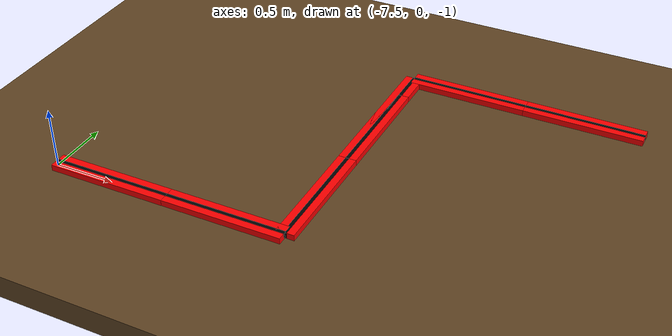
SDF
<sdf version="1.7">
 <world name="teknofest_pipe">
  <physics name="default_physics" default="true" type="ode">
   <max_step_size>0.01</max_step_size>
   <real_time_factor>1</real_time_factor>
   <real_time_update_rate>100</real_time_update_rate>
  </physics>
  <scene>
   <ambient>0.45 0.52 0.55 1</ambient>
   <background>0.06 0.12 0.15 1</background>
   <shadows>false</shadows>
  </scene>
  <light type="directional" name="surface_light">
   <pose>0 0 10 0 0 0</pose>
   <diffuse>0.65 0.72 0.75 1</diffuse>
   <specular>0.01 0.01 0.01 1</specular>
   <direction>0.15 -0.20 -1</direction>
   <cast_shadows>false</cast_shadows>
  </light>
  <model name="teknofest_seafloor">
   <static>true</static>
   <pose>0 0 -1.1 0 0 0</pose>
   <link name="seafloor">
    <visual name="sand_visual">
     <geometry><box><size>40 40 0.2</size></box></geometry>
     <material>
      <ambient>0.24 0.17 0.09 1</ambient>
      <diffuse>0.38 0.27 0.14 1</diffuse>
      <specular>0 0 0 1</specular>
     </material>
    </visual>
    <collision name="sand_collision"><geometry><box><size>40 40 0.2</size></box></geometry></collision>
   </link>
  </model>
  <include>
   <uri>model://teknofest_pipe</uri>
   <name>teknofest_pipe_00</name>
   <pose>-7.00 0.00 -1.0 0 0 0.000000</pose>
  </include>
  <include>
   <uri>model://teknofest_pipe</uri>
   <name>teknofest_pipe_01</name>
   <pose>-6.00 0.00 -1.0 0 0 0.000000</pose>
  </include>
  <include>
   <uri>model://teknofest_pipe</uri>
   <name>teknofest_pipe_02</name>
   <pose>-5.50 0.50 -1.0 0 0 1.570796</pose>
  </include>
  <include>
   <uri>model://teknofest_pipe</uri>
   <name>teknofest_pipe_03</name>
   <pose>-5.50 1.50 -1.0 0 0 1.570796</pose>
  </include>
  <include>
   <uri>model://teknofest_pipe</uri>
   <name>teknofest_pipe_04</name>
   <pose>-5.50 1.80 -1.0 0 0 1.570796</pose>
  </include>
  <include>
   <uri>model://teknofest_pipe</uri>
   <name>teknofest_pipe_05</name>
   <pose>-5.00 2.30 -1.0 0 0 0.000000</pose>
  </include>
  <include>
   <uri>model://teknofest_pipe</uri>
   <name>teknofest_pipe_06</name>
   <pose>-4.00 2.30 -1.0 0 0 0.000000</pose>
  </include>
  <plugin name="underwater_current_plugin" filename="libuuv_underwater_current_ros_plugin.so">
   <namespace>hydrodynamics</namespace>
   <constant_current>
    <topic>current_velocity</topic>
    <velocity><mean>0</mean><min>0</min><max>0.001</max><mu>0</mu><noiseAmp>0</noiseAmp></velocity>
    <horizontal_angle>
     <mean>0</mean>
     <min>-3.14159</min>
     <max>3.14159</max>
     <mu>0</mu>
     <noiseAmp>0</noiseAmp>
    </horizontal_angle>
    <vertical_angle>
     <mean>0</mean>
     <min>-3.14159</min>
     <max>3.14159</max>
     <mu>0</mu>
     <noiseAmp>0</noiseAmp>
    </vertical_angle>
   </constant_current>
  </plugin>
  <plugin name="sc_interface" filename="libuuv_sc_ros_interface_plugin.so"/>
 </world>
</sdf>

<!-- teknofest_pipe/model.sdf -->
<sdf version="1.7">
  <model name="teknofest_pipe">
    <static>true</static>
    <link name="line">
      <visual name="red_port_band">
        <pose>0 -0.045 0.025 0 0 0</pose>
        <geometry>
          <box><size>1.0 0.06 0.05</size></box>
        </geometry>
        <material>
          <ambient>0.8 0.0 0.0 1</ambient>
          <diffuse>1.0 0.0 0.0 1</diffuse>
          <specular>0.05 0.05 0.05 1</specular>
        </material>
      </visual>

      <visual name="black_center_band">
        <pose>0 0 0.025 0 0 0</pose>
        <geometry>
          <box><size>1.0 0.03 0.05</size></box>
        </geometry>
        <material>
          <ambient>0.005 0.005 0.005 1</ambient>
          <diffuse>0.01 0.01 0.01 1</diffuse>
          <specular>0 0 0 1</specular>
        </material>
      </visual>

      <visual name="red_starboard_band">
        <pose>0 0.045 0.025 0 0 0</pose>
        <geometry>
          <box><size>1.0 0.06 0.05</size></box>
        </geometry>
        <material>
          <ambient>0.8 0.0 0.0 1</ambient>
          <diffuse>1.0 0.0 0.0 1</diffuse>
          <specular>0.05 0.05 0.05 1</specular>
        </material>
      </visual>

      <collision name="line_collision">
        <pose>0 0 0.025 0 0 0</pose>
        <geometry>
          <box><size>1.0 0.15 0.05</size></box>
        </geometry>
      </collision>
    </link>
  </model>
</sdf>
